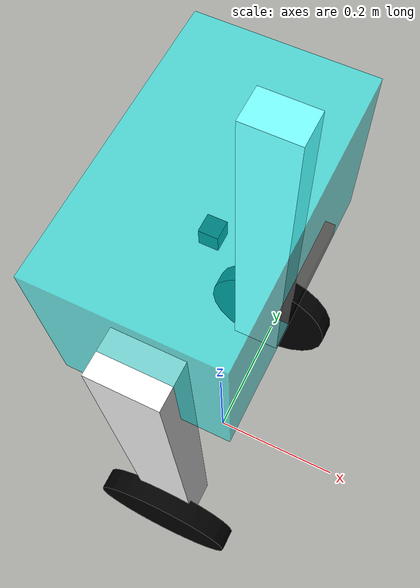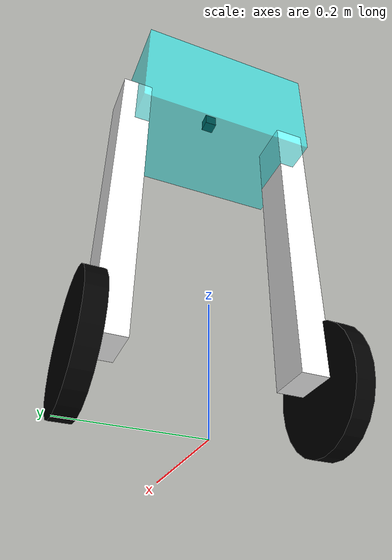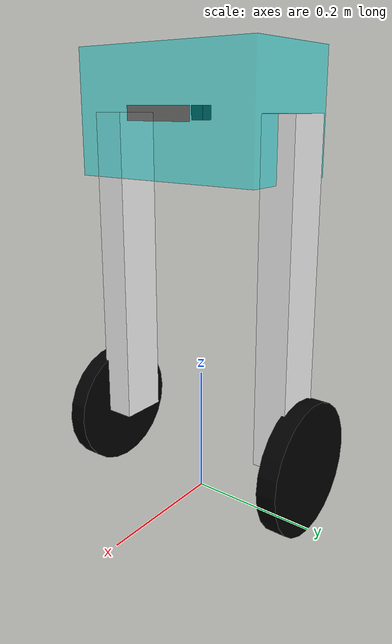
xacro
<?xml version="1.0"?>
<robot xmlns:xacro="http://www.ros.org/wiki/xacro" name="balance_car">
<!-- base -->
<xacro:include filename="$(find robot_description_pkg)/urdf/base_link.urdf.xacro"/>
<xacro:include filename="$(find robot_description_pkg)/urdf/leg_link.urdf.xacro"/>
<!-- actor -->
<xacro:include filename="$(find robot_description_pkg)/urdf/actor/wheel_link.urdf.xacro"/>
<!-- sensor -->
<xacro:include filename="$(find robot_description_pkg)/urdf/sensor/imu_link.urdf.xacro"/>
<xacro:include filename="$(find robot_description_pkg)/urdf/sensor/camera_link.urdf.xacro"/>
<!-- control -->
<xacro:include filename="$(find robot_description_pkg)/urdf/balance_car.ros2_control.xacro"/>
<!-- plugin -->
<xacro:include filename="$(find robot_description_pkg)/plugins/gazebo_sensor_imu.xacro"/>
<xacro:include filename="$(find robot_description_pkg)/plugins/gazebo_sensor_camera_plugin.xacro"/>

<xacro:base_link_xacro xyz="0.0 0.0 0.6"/>
<xacro:leg_link_xacro position="left" xyz="0.0 0.15 -0.25"/>
<xacro:leg_link_xacro position="right" xyz="0.0 -0.15 -0.25"/>
<xacro:wheel_link_xacro position="left" xyz="0.0 0.035 -0.25"/>
<xacro:wheel_link_xacro position="right" xyz="0.0 -0.035 -0.25"/>
<xacro:imu_link_xacro/>
<xacro:camera_link_xacro xyz="0.09 0.0 0.0"/>
<xacro:gazebo_sensor_imu_plugin/>
<xacro:gazebo_sensor_camera_plugin/>
<xacro:balance_car_ros2_control/>

</robot>

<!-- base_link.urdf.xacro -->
<robot xmlns:xacro="http://www.ros.org/wiki/xacro">
<xacro:include filename="$(find robot_description_pkg)/urdf/common_inertia.xacro"/>

    <xacro:macro name="base_link_xacro" params="xyz">

        <link name="base_footprint_link"/>

        <link name="base_link">

            <visual>
               <origin xyz="0.0 0.0 0.0" rpy="0.0 0.0 0.0"/>
                <geometry>
                    <box size="0.18 0.3 0.18"/>
                </geometry>
                <material name="green">
                    <color rgba="0.0 1.0 1.0 0.5"/>
                </material>
            </visual>
            <collision>
                <origin xyz="0.0 0.0 0.0" rpy="0.0 0.0 0.0"/>
                <geometry>
                    <box size="0.18 0.3 0.18"/>
                </geometry>
                <material name="green">
                    <color rgba="0.0 1.0 1.0 0.5"/>
                </material>
            </collision>

            <xacro:box_inertia m="5.0" w="0.18" h="0.3" d="0.18"/>

        </link>

        <joint name="base_link_joint" type="fixed">
            <origin xyz="${xyz}" rpy="0.0 0.0 0.0"/>
            <parent link="base_footprint_link"/>
            <child link="base_link"/>
        </joint>

        <gazebo reference="base_link">
	        <material>Gazebo/Green</material>
        </gazebo>

    </xacro:macro>

</robot>

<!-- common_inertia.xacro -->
<robot xmlns:xacro="http://ros.org/wiki/xacro">
    <xacro:macro name="box_inertia" params="m w h d">
        <inertial>
            <mass value="${m}" />
            <inertia ixx="${(m/12) * (h*h + d*d)}" ixy="0.0" ixz="0.0" iyy="${(m/12) * (w*w + d*d)}" iyz="0.0" izz="${(m/12) * (w*w + h*h)}" />
        </inertial>
    </xacro:macro>

    <xacro:macro name="cylinder_inertia_z" params="m r h">
        <inertial>
            <mass value="${m}" />
            <inertia ixx="${(m/12) * (3*r*r + h*h)}" ixy="0" ixz="0" iyy="${(m/12) * (3*r*r + h*h)}" iyz="0" izz="${(m/2) * (r*r)}" />
        </inertial>
    </xacro:macro>

    <xacro:macro name="cylinder_inertia_y" params="m r h">
        <inertial>
            <mass value="${m}" />
            <inertia ixx="${(m/12) * (3*r*r + h*h)}" ixy="0" ixz="0" iyy="${(m/2) * (r*r)}" iyz="0" izz="${(m/12) * (3*r*r + h*h)}" />
        </inertial>
    </xacro:macro>

    <xacro:macro name="sphere_inertia" params="m r">
        <inertial>
            <mass value="${m}" />
            <inertia ixx="${(2/5) * m * (r*r)}" ixy="0.0" ixz="0.0" iyy="${(2/5) * m * (r*r)}" iyz="0.0" izz="${(2/5) * m * (r*r)}" />
        </inertial>
    </xacro:macro>

</robot>

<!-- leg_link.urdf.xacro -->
<robot xmlns:xacro="http://www.ros.org/wiki/xacro" >
<xacro:include filename="$(find robot_description_pkg)/urdf/common_inertia.xacro"/>

    <xacro:macro name="leg_link_xacro" params="position xyz">

        <link name="${position}_leg_link">

            <visual>
                <origin xyz="0.0 0.0 0.0" rpy="0.0 0.0 0.0"/>
                <geometry>
                    <box size="0.075 0.05 0.5"/>
                </geometry>
                <material name="white">
                    <color rgba="1.0 1.0 1.0 1.0"/>
                </material>
            </visual>
            <collision>
                <origin xyz="0.0 0.0 0.0" rpy="0.0 0.0 0.0"/>
                <geometry>
                    <box size="0.075 0.05 0.5"/>
                </geometry>
                <material name="white">
                    <color rgba="1.0 1.0 1.0 1.0"/>
                </material>
            </collision>

            <xacro:box_inertia m="0.4" w="0.075" h="0.05" d="0.5"/>

        </link>

        <joint name="${position}_leg_joint" type="fixed">
            <origin xyz="${xyz}" rpy="0.0 0.0 0.0"/>
            <parent link="base_link"/>
            <child link="${position}_leg_link"/>
        </joint>

    </xacro:macro>

</robot>

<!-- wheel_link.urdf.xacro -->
<robot xmlns:xacro="http://www.ros.org/wiki/xacro">
<xacro:include filename="$(find robot_description_pkg)/urdf/common_inertia.xacro"/>

    <xacro:macro name="wheel_link_xacro" params="position xyz">

        <link name="${position}_wheel_link">

            <visual>
                <origin xyz="0.0 0.0 0.0" rpy="1.57079 0.0 0.0"/>
                <geometry>
                    <cylinder radius="0.1" length="0.03"/>
                </geometry>
                <material name="black">
                    <color rgba="0.0 0.0 0.0 1.0"/>
                </material>
            </visual>
            <collision>
                <origin xyz="0.0 0.0 0.0" rpy="1.57079 0.0 0.0"/>
                <geometry>
                    <cylinder radius="0.1" length="0.03"/>
                </geometry>
                <material name="black">
                    <color rgba="0.0 0.0 0.0 1.0"/>
                </material>
            </collision>

            <xacro:cylinder_inertia_y m="1.18" r="0.1" h="0.03"/>

        </link>

        <joint name="${position}_wheel_joint" type="continuous">
            <origin xyz="${xyz}" rpy="0.0 0.0 0.0"/>
            <parent link="${position}_leg_link"/>
            <child link="${position}_wheel_link"/>
            <axis xyz="0.0 1.0 0.0"/>
        </joint>

        <gazebo reference="${position}_wheel_link">
	        <material>Gazebo/Yellow</material>
	        <mu1 value="20.0"/>
	        <mu2 value="20.0"/>
	        <kp value="1000000000000000.0"/>
	        <kd value="1.0"/>
        </gazebo>

    </xacro:macro>

</robot>

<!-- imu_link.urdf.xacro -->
<robot xmlns:xacro="http://www.ros.org/wiki/xacro">
<xacro:include filename="$(find robot_description_pkg)/urdf/common_inertia.xacro"/>

    <xacro:macro name="imu_link_xacro">
        <link name="imu_link">

            <visual>
                <origin xyz="0.0 0.0 0.0" rpy="0.0 0.0 0.0"/>
                <geometry>
                    <box size="0.02 0.02 0.02"/>
                </geometry>
                <material name="black">
                    <color rgba="0.0 0.0 0.0 1.0"/>
                </material>
            </visual>

            <xacro:box_inertia m="0.01" w="0.12" h="0.12" d="0.12"/>

        </link>

        <joint name="joint_name" type="fixed">
            <origin xyz="0.0 0.0 0.0" rpy="0.0 0.0 0.0"/>
            <parent link="base_link"/>
            <child link="imu_link"/>
        </joint>

    </xacro:macro>

</robot>

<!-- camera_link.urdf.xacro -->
<robot xmlns:xacro="http://www.ros.org/wiki/xacro">
    <xacro:include filename="$(find robot_description_pkg)/urdf/common_inertia.xacro"/>
    <xacro:macro name="camera_link_xacro" params="xyz">
        <link name="camera_link">

            <visual>
                <origin xyz="0.0 0.0 0.0" rpy="0.0 0.0 0.0"/>
                <geometry>
                    <box size="0.02 0.10 0.02"/>
                </geometry>
                <material name="black">
                    <color rgba="0.0 0.0 0.0 0.5"/>
                </material>
            </visual>

            <collision>
                <origin xyz="0.0 0.0 0.0" rpy="0.0 0.0 0.0"/>
                <geometry>
                    <box size="0.02 0.10 0.02"/>
                </geometry>
                <material name="black">
                    <color rgba="0.0 0.0 0.0 0.5"/>
                </material>
            </collision>

        </link>

        <joint name="cameralink_joint" type="fixed">
                <origin xyz="${xyz}" rpy="0.0 0.0 0.0"/>
                <parent link="base_link"/>
                <child link="camera_link"/>
        </joint>

        <gazebo reference="camera_link">
            <material>Gazebo/Black</material>
        </gazebo>

    </xacro:macro>

</robot>
